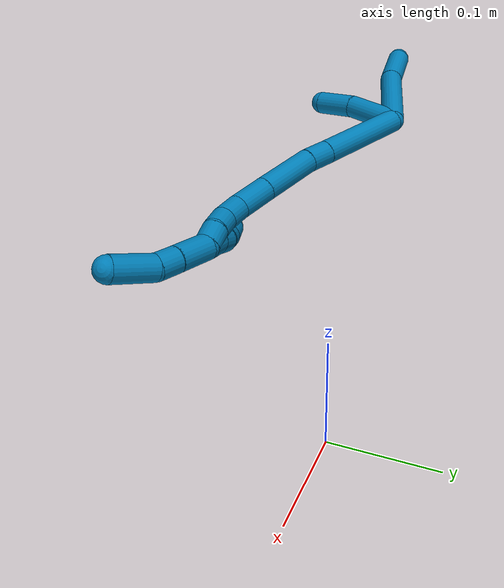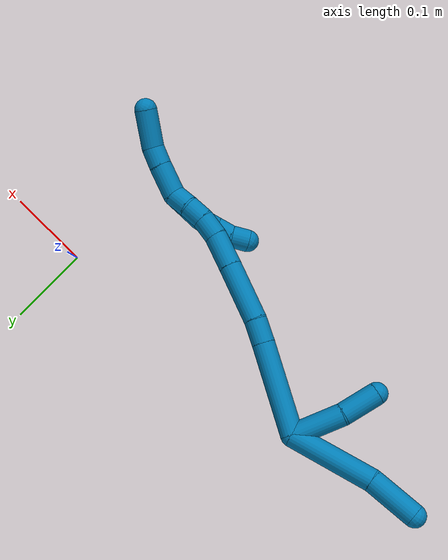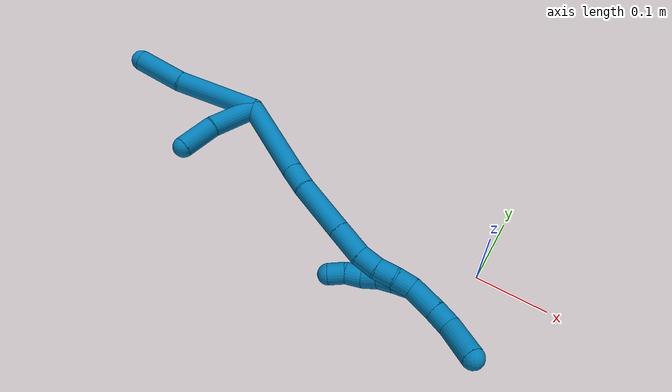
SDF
<sdf version="1.7">
 <world name="default">
  <model name="9">
   <static>0</static>
   <link name="9">
    <collision name="collision-cylinder-e_1_2_8">
     <pose>0.011797 0.032339 0.03277 -0.778775 0.250838 -0.10338</pose>
     <geometry><cylinder><radius>0.0125</radius><length>0.095054</length></cylinder></geometry>
     <surface>
      <friction><ode><mu>1.16</mu><mu2>1.16</mu2><slip1>0</slip1><slip2>0</slip2></ode></friction>
      <contact><ode><kp>1e+06</kp><kd>1</kd><max_vel>0</max_vel><min_depth>0.001</min_depth></ode></contact>
     </surface>
    </collision>
    <visual name="visual-cylinder-e_1_2_8">
     <pose>0.011797 0.032339 0.03277 -0.778775 0.250838 -0.10338</pose>
     <geometry><cylinder><radius>0.0125</radius><length>0.095054</length></cylinder></geometry>
     <material><ambient>0 0.490196 0.709804 1</ambient></material>
    </visual>
    <collision name="collision-cylinder-e_2_8_6">
     <pose>0.025348 0.084504 0.084476 -0.808383 0.063907 -0.027343</pose>
     <geometry><cylinder><radius>0.0125</radius><length>0.054946</length></cylinder></geometry>
     <surface>
      <friction><ode><mu>1.16</mu><mu2>1.16</mu2><slip1>0</slip1><slip2>0</slip2></ode></friction>
      <contact><ode><kp>1e+06</kp><kd>1</kd><max_vel>0</max_vel><min_depth>0.001</min_depth></ode></contact>
     </surface>
    </collision>
    <visual name="visual-cylinder-e_2_8_6">
     <pose>0.025348 0.084504 0.084476 -0.808383 0.063907 -0.027343</pose>
     <geometry><cylinder><radius>0.0125</radius><length>0.054946</length></cylinder></geometry>
     <material><ambient>0 0.490196 0.709804 1</ambient></material>
    </visual>
    <collision name="collision-cylinder-e_1_2_9">
     <pose>0.025834 0.004512 0.012107 -0.356761 1.10705 -0.221918</pose>
     <geometry><cylinder><radius>0.0125</radius><length>0.05777</length></cylinder></geometry>
     <surface>
      <friction><ode><mu>1.16</mu><mu2>1.16</mu2><slip1>0</slip1><slip2>0</slip2></ode></friction>
      <contact><ode><kp>1e+06</kp><kd>1</kd><max_vel>0</max_vel><min_depth>0.001</min_depth></ode></contact>
     </surface>
    </collision>
    <visual name="visual-cylinder-e_1_2_9">
     <pose>0.025834 0.004512 0.012107 -0.356761 1.10705 -0.221918</pose>
     <geometry><cylinder><radius>0.0125</radius><length>0.05777</length></cylinder></geometry>
     <material><ambient>0 0.490196 0.709804 1</ambient></material>
    </visual>
    <collision name="collision-cylinder-e_2_9_5">
     <pose>0.071073 0.008258 0.032503 0.092236 1.16556 0.060821</pose>
     <geometry><cylinder><radius>0.0125</radius><length>0.04223</length></cylinder></geometry>
     <surface>
      <friction><ode><mu>1.16</mu><mu2>1.16</mu2><slip1>0</slip1><slip2>0</slip2></ode></friction>
      <contact><ode><kp>1e+06</kp><kd>1</kd><max_vel>0</max_vel><min_depth>0.001</min_depth></ode></contact>
     </surface>
    </collision>
    <visual name="visual-cylinder-e_2_9_5">
     <pose>0.071073 0.008258 0.032503 0.092236 1.16556 0.060821</pose>
     <geometry><cylinder><radius>0.0125</radius><length>0.04223</length></cylinder></geometry>
     <material><ambient>0 0.490196 0.709804 1</ambient></material>
    </visual>
    <collision name="collision-cylinder-e_1_2_10">
     <pose>0.025242 -0.033499 -0.029427 2.29157 0.515126 1.05417</pose>
     <geometry><cylinder><radius>0.0125</radius><length>0.102477</length></cylinder></geometry>
     <surface>
      <friction><ode><mu>1.16</mu><mu2>1.16</mu2><slip1>0</slip1><slip2>0</slip2></ode></friction>
      <contact><ode><kp>1e+06</kp><kd>1</kd><max_vel>0</max_vel><min_depth>0.001</min_depth></ode></contact>
     </surface>
    </collision>
    <visual name="visual-cylinder-e_1_2_10">
     <pose>0.025242 -0.033499 -0.029427 2.29157 0.515126 1.05417</pose>
     <geometry><cylinder><radius>0.0125</radius><length>0.102477</length></cylinder></geometry>
     <material><ambient>0 0.490196 0.709804 1</ambient></material>
    </visual>
    <collision name="collision-cylinder-e_2_10_11">
     <pose>0.056989 -0.075564 -0.067153 2.34034 0.499336 1.08386</pose>
     <geometry><cylinder><radius>0.0125</radius><length>0.027169</length></cylinder></geometry>
     <surface>
      <friction><ode><mu>1.16</mu><mu2>1.16</mu2><slip1>0</slip1><slip2>0</slip2></ode></friction>
      <contact><ode><kp>1e+06</kp><kd>1</kd><max_vel>0</max_vel><min_depth>0.001</min_depth></ode></contact>
     </surface>
    </collision>
    <visual name="visual-cylinder-e_2_10_11">
     <pose>0.056989 -0.075564 -0.067153 2.34034 0.499336 1.08386</pose>
     <geometry><cylinder><radius>0.0125</radius><length>0.027169</length></cylinder></geometry>
     <material><ambient>0 0.490196 0.709804 1</ambient></material>
    </visual>
    <collision name="collision-cylinder-e_3_11_12">
     <pose>0.075389 -0.106906 -0.095324 2.28822 0.374896 0.790521</pose>
     <geometry><cylinder><radius>0.0125</radius><length>0.064966</length></cylinder></geometry>
     <surface>
      <friction><ode><mu>1.16</mu><mu2>1.16</mu2><slip1>0</slip1><slip2>0</slip2></ode></friction>
      <contact><ode><kp>1e+06</kp><kd>1</kd><max_vel>0</max_vel><min_depth>0.001</min_depth></ode></contact>
     </surface>
    </collision>
    <visual name="visual-cylinder-e_3_11_12">
     <pose>0.075389 -0.106906 -0.095324 2.28822 0.374896 0.790521</pose>
     <geometry><cylinder><radius>0.0125</radius><length>0.064966</length></cylinder></geometry>
     <material><ambient>0 0.490196 0.709804 1</ambient></material>
    </visual>
    <collision name="collision-cylinder-e_4_12_13">
     <pose>0.094061 -0.14314 -0.126882 2.28583 0.363375 0.765888</pose>
     <geometry><cylinder><radius>0.0125</radius><length>0.038137</length></cylinder></geometry>
     <surface>
      <friction><ode><mu>1.16</mu><mu2>1.16</mu2><slip1>0</slip1><slip2>0</slip2></ode></friction>
      <contact><ode><kp>1e+06</kp><kd>1</kd><max_vel>0</max_vel><min_depth>0.001</min_depth></ode></contact>
     </surface>
    </collision>
    <visual name="visual-cylinder-e_4_12_13">
     <pose>0.094061 -0.14314 -0.126882 2.28583 0.363375 0.765888</pose>
     <geometry><cylinder><radius>0.0125</radius><length>0.038137</length></cylinder></geometry>
     <material><ambient>0 0.490196 0.709804 1</ambient></material>
    </visual>
    <collision name="collision-cylinder-e_5_13_14">
     <pose>0.103192 -0.164409 -0.147421 2.4186 0.196778 0.51071</pose>
     <geometry><cylinder><radius>0.0125</radius><length>0.024078</length></cylinder></geometry>
     <surface>
      <friction><ode><mu>1.16</mu><mu2>1.16</mu2><slip1>0</slip1><slip2>0</slip2></ode></friction>
      <contact><ode><kp>1e+06</kp><kd>1</kd><max_vel>0</max_vel><min_depth>0.001</min_depth></ode></contact>
     </surface>
    </collision>
    <visual name="visual-cylinder-e_5_13_14">
     <pose>0.103192 -0.164409 -0.147421 2.4186 0.196778 0.51071</pose>
     <geometry><cylinder><radius>0.0125</radius><length>0.024078</length></cylinder></geometry>
     <material><ambient>0 0.490196 0.709804 1</ambient></material>
    </visual>
    <collision name="collision-cylinder-e_6_14_15">
     <pose>0.105547 -0.178759 -0.164627 2.47752 0.000102 0.000297</pose>
     <geometry><cylinder><radius>0.0125</radius><length>0.021215</length></cylinder></geometry>
     <surface>
      <friction><ode><mu>1.16</mu><mu2>1.16</mu2><slip1>0</slip1><slip2>0</slip2></ode></friction>
      <contact><ode><kp>1e+06</kp><kd>1</kd><max_vel>0</max_vel><min_depth>0.001</min_depth></ode></contact>
     </surface>
    </collision>
    <visual name="visual-cylinder-e_6_14_15">
     <pose>0.105547 -0.178759 -0.164627 2.47752 0.000102 0.000297</pose>
     <geometry><cylinder><radius>0.0125</radius><length>0.021215</length></cylinder></geometry>
     <material><ambient>0 0.490196 0.709804 1</ambient></material>
    </visual>
    <collision name="collision-cylinder-e_7_15_1">
     <pose>0.104808 -0.193601 -0.180125 2.28127 -0.067405 -0.146702</pose>
     <geometry><cylinder><radius>0.0125</radius><length>0.021958</length></cylinder></geometry>
     <surface>
      <friction><ode><mu>1.16</mu><mu2>1.16</mu2><slip1>0</slip1><slip2>0</slip2></ode></friction>
      <contact><ode><kp>1e+06</kp><kd>1</kd><max_vel>0</max_vel><min_depth>0.001</min_depth></ode></contact>
     </surface>
    </collision>
    <visual name="visual-cylinder-e_7_15_1">
     <pose>0.104808 -0.193601 -0.180125 2.28127 -0.067405 -0.146702</pose>
     <geometry><cylinder><radius>0.0125</radius><length>0.021958</length></cylinder></geometry>
     <material><ambient>0 0.490196 0.709804 1</ambient></material>
    </visual>
    <collision name="collision-cylinder-e_1_1_16">
     <pose>0.111234 -0.2114 -0.200574 2.52173 0.413088 1.15875</pose>
     <geometry><cylinder><radius>0.0125</radius><length>0.035695</length></cylinder></geometry>
     <surface>
      <friction><ode><mu>1.16</mu><mu2>1.16</mu2><slip1>0</slip1><slip2>0</slip2></ode></friction>
      <contact><ode><kp>1e+06</kp><kd>1</kd><max_vel>0</max_vel><min_depth>0.001</min_depth></ode></contact>
     </surface>
    </collision>
    <visual name="visual-cylinder-e_1_1_16">
     <pose>0.111234 -0.2114 -0.200574 2.52173 0.413088 1.15875</pose>
     <geometry><cylinder><radius>0.0125</radius><length>0.035695</length></cylinder></geometry>
     <material><ambient>0 0.490196 0.709804 1</ambient></material>
    </visual>
    <collision name="collision-cylinder-e_2_16_17">
     <pose>0.123202 -0.226762 -0.221641 2.49446 0.458616 1.2161</pose>
     <geometry><cylinder><radius>0.0125</radius><length>0.021701</length></cylinder></geometry>
     <surface>
      <friction><ode><mu>1.16</mu><mu2>1.16</mu2><slip1>0</slip1><slip2>0</slip2></ode></friction>
      <contact><ode><kp>1e+06</kp><kd>1</kd><max_vel>0</max_vel><min_depth>0.001</min_depth></ode></contact>
     </surface>
    </collision>
    <visual name="visual-cylinder-e_2_16_17">
     <pose>0.123202 -0.226762 -0.221641 2.49446 0.458616 1.2161</pose>
     <geometry><cylinder><radius>0.0125</radius><length>0.021701</length></cylinder></geometry>
     <material><ambient>0 0.490196 0.709804 1</ambient></material>
    </visual>
    <collision name="collision-cylinder-e_3_17_4">
     <pose>0.141662 -0.238896 -0.244503 2.74811 0.695914 2.13663</pose>
     <geometry><cylinder><radius>0.0125</radius><length>0.042604</length></cylinder></geometry>
     <surface>
      <friction><ode><mu>1.16</mu><mu2>1.16</mu2><slip1>0</slip1><slip2>0</slip2></ode></friction>
      <contact><ode><kp>1e+06</kp><kd>1</kd><max_vel>0</max_vel><min_depth>0.001</min_depth></ode></contact>
     </surface>
    </collision>
    <visual name="visual-cylinder-e_3_17_4">
     <pose>0.141662 -0.238896 -0.244503 2.74811 0.695914 2.13663</pose>
     <geometry><cylinder><radius>0.0125</radius><length>0.042604</length></cylinder></geometry>
     <material><ambient>0 0.490196 0.709804 1</ambient></material>
    </visual>
    <collision name="collision-cylinder-e_1_1_18">
     <pose>0.103529 -0.19833 -0.177945 -0.366099 -0.053996 0.009998</pose>
     <geometry><cylinder><radius>0.0125</radius><length>0.02</length></cylinder></geometry>
     <surface>
      <friction><ode><mu>1.16</mu><mu2>1.16</mu2><slip1>0</slip1><slip2>0</slip2></ode></friction>
      <contact><ode><kp>1e+06</kp><kd>1</kd><max_vel>0</max_vel><min_depth>0.001</min_depth></ode></contact>
     </surface>
    </collision>
    <visual name="visual-cylinder-e_1_1_18">
     <pose>0.103529 -0.19833 -0.177945 -0.366099 -0.053996 0.009998</pose>
     <geometry><cylinder><radius>0.0125</radius><length>0.02</length></cylinder></geometry>
     <material><ambient>0 0.490196 0.709804 1</ambient></material>
    </visual>
    <collision name="collision-cylinder-e_2_18_19">
     <pose>0.102177 -0.192291 -0.158964 -0.249844 -0.081332 0.010219</pose>
     <geometry><cylinder><radius>0.0125</radius><length>0.02</length></cylinder></geometry>
     <surface>
      <friction><ode><mu>1.16</mu><mu2>1.16</mu2><slip1>0</slip1><slip2>0</slip2></ode></friction>
      <contact><ode><kp>1e+06</kp><kd>1</kd><max_vel>0</max_vel><min_depth>0.001</min_depth></ode></contact>
     </surface>
    </collision>
    <visual name="visual-cylinder-e_2_18_19">
     <pose>0.102177 -0.192291 -0.158964 -0.249844 -0.081332 0.010219</pose>
     <geometry><cylinder><radius>0.0125</radius><length>0.02</length></cylinder></geometry>
     <material><ambient>0 0.490196 0.709804 1</ambient></material>
    </visual>
    <collision name="collision-cylinder-e_3_19_20">
     <pose>0.102875 -0.187706 -0.139651 -0.216239 0.151586 -0.016485</pose>
     <geometry><cylinder><radius>0.0125</radius><length>0.02</length></cylinder></geometry>
     <surface>
      <friction><ode><mu>1.16</mu><mu2>1.16</mu2><slip1>0</slip1><slip2>0</slip2></ode></friction>
      <contact><ode><kp>1e+06</kp><kd>1</kd><max_vel>0</max_vel><min_depth>0.001</min_depth></ode></contact>
     </surface>
    </collision>
    <visual name="visual-cylinder-e_3_19_20">
     <pose>0.102875 -0.187706 -0.139651 -0.216239 0.151586 -0.016485</pose>
     <geometry><cylinder><radius>0.0125</radius><length>0.02</length></cylinder></geometry>
     <material><ambient>0 0.490196 0.709804 1</ambient></material>
    </visual>
    <collision name="collision-cylinder-e_4_20_21">
     <pose>0.10629 -0.180617 -0.121529 -0.530535 0.191647 -0.052213</pose>
     <geometry><cylinder><radius>0.0125</radius><length>0.02</length></cylinder></geometry>
     <surface>
      <friction><ode><mu>1.16</mu><mu2>1.16</mu2><slip1>0</slip1><slip2>0</slip2></ode></friction>
      <contact><ode><kp>1e+06</kp><kd>1</kd><max_vel>0</max_vel><min_depth>0.001</min_depth></ode></contact>
     </surface>
    </collision>
    <visual name="visual-cylinder-e_4_20_21">
     <pose>0.10629 -0.180617 -0.121529 -0.530535 0.191647 -0.052213</pose>
     <geometry><cylinder><radius>0.0125</radius><length>0.02</length></cylinder></geometry>
     <material><ambient>0 0.490196 0.709804 1</ambient></material>
    </visual>
    <collision name="collision-cylinder-e_5_21_3">
     <pose>0.112284 -0.172759 -0.104406 -0.322392 0.421263 -0.069503</pose>
     <geometry><cylinder><radius>0.0125</radius><length>0.02</length></cylinder></geometry>
     <surface>
      <friction><ode><mu>1.16</mu><mu2>1.16</mu2><slip1>0</slip1><slip2>0</slip2></ode></friction>
      <contact><ode><kp>1e+06</kp><kd>1</kd><max_vel>0</max_vel><min_depth>0.001</min_depth></ode></contact>
     </surface>
    </collision>
    <visual name="visual-cylinder-e_5_21_3">
     <pose>0.112284 -0.172759 -0.104406 -0.322392 0.421263 -0.069503</pose>
     <geometry><cylinder><radius>0.0125</radius><length>0.02</length></cylinder></geometry>
     <material><ambient>0 0.490196 0.709804 1</ambient></material>
    </visual>
    <collision name="collision-sphere-3">
     <pose>0.116373 -0.169867 -0.09575 0 -0 0</pose>
     <geometry><sphere><radius>0.0125</radius></sphere></geometry>
     <surface>
      <friction><ode><mu>1.16</mu><mu2>1.16</mu2><slip1>0</slip1><slip2>0</slip2></ode></friction>
      <contact><ode><kp>1e+06</kp><kd>1</kd><max_vel>0</max_vel><min_depth>0.001</min_depth></ode></contact>
     </surface>
    </collision>
    <visual name="visual-sphere-3">
     <pose>0.116373 -0.169867 -0.09575 0 -0 0</pose>
     <geometry><sphere><radius>0.0125</radius></sphere></geometry>
     <material><ambient>0 0.490196 0.709804 1</ambient></material>
    </visual>
    <collision name="collision-sphere-21">
     <pose>0.108194 -0.17565 -0.113061 0 -0 0</pose>
     <geometry><sphere><radius>0.0125</radius></sphere></geometry>
     <surface>
      <friction><ode><mu>1.16</mu><mu2>1.16</mu2><slip1>0</slip1><slip2>0</slip2></ode></friction>
      <contact><ode><kp>1e+06</kp><kd>1</kd><max_vel>0</max_vel><min_depth>0.001</min_depth></ode></contact>
     </surface>
    </collision>
    <visual name="visual-sphere-21">
     <pose>0.108194 -0.17565 -0.113061 0 -0 0</pose>
     <geometry><sphere><radius>0.0125</radius></sphere></geometry>
     <material><ambient>0 0.490196 0.709804 1</ambient></material>
    </visual>
    <collision name="collision-sphere-20">
     <pose>0.104385 -0.185585 -0.129996 0 -0 0</pose>
     <geometry><sphere><radius>0.0125</radius></sphere></geometry>
     <surface>
      <friction><ode><mu>1.16</mu><mu2>1.16</mu2><slip1>0</slip1><slip2>0</slip2></ode></friction>
      <contact><ode><kp>1e+06</kp><kd>1</kd><max_vel>0</max_vel><min_depth>0.001</min_depth></ode></contact>
     </surface>
    </collision>
    <visual name="visual-sphere-20">
     <pose>0.104385 -0.185585 -0.129996 0 -0 0</pose>
     <geometry><sphere><radius>0.0125</radius></sphere></geometry>
     <material><ambient>0 0.490196 0.709804 1</ambient></material>
    </visual>
    <collision name="collision-sphere-19">
     <pose>0.101365 -0.189827 -0.149307 0 -0 0</pose>
     <geometry><sphere><radius>0.0125</radius></sphere></geometry>
     <surface>
      <friction><ode><mu>1.16</mu><mu2>1.16</mu2><slip1>0</slip1><slip2>0</slip2></ode></friction>
      <contact><ode><kp>1e+06</kp><kd>1</kd><max_vel>0</max_vel><min_depth>0.001</min_depth></ode></contact>
     </surface>
    </collision>
    <visual name="visual-sphere-19">
     <pose>0.101365 -0.189827 -0.149307 0 -0 0</pose>
     <geometry><sphere><radius>0.0125</radius></sphere></geometry>
     <material><ambient>0 0.490196 0.709804 1</ambient></material>
    </visual>
    <collision name="collision-sphere-10">
     <pose>0.050485 -0.066999 -0.058855 0 -0 0</pose>
     <geometry><sphere><radius>0.0125</radius></sphere></geometry>
     <surface>
      <friction><ode><mu>1.16</mu><mu2>1.16</mu2><slip1>0</slip1><slip2>0</slip2></ode></friction>
      <contact><ode><kp>1e+06</kp><kd>1</kd><max_vel>0</max_vel><min_depth>0.001</min_depth></ode></contact>
     </surface>
    </collision>
    <visual name="visual-sphere-10">
     <pose>0.050485 -0.066999 -0.058855 0 -0 0</pose>
     <geometry><sphere><radius>0.0125</radius></sphere></geometry>
     <material><ambient>0 0.490196 0.709804 1</ambient></material>
    </visual>
    <collision name="collision-sphere-5">
     <pose>0.090478 0.007491 0.040792 0 -0 0</pose>
     <geometry><sphere><radius>0.0125</radius></sphere></geometry>
     <surface>
      <friction><ode><mu>1.16</mu><mu2>1.16</mu2><slip1>0</slip1><slip2>0</slip2></ode></friction>
      <contact><ode><kp>1e+06</kp><kd>1</kd><max_vel>0</max_vel><min_depth>0.001</min_depth></ode></contact>
     </surface>
    </collision>
    <visual name="visual-sphere-5">
     <pose>0.090478 0.007491 0.040792 0 -0 0</pose>
     <geometry><sphere><radius>0.0125</radius></sphere></geometry>
     <material><ambient>0 0.490196 0.709804 1</ambient></material>
    </visual>
    <collision name="collision-sphere-6">
     <pose>0.027103 0.104331 0.103412 0 -0 0</pose>
     <geometry><sphere><radius>0.0125</radius></sphere></geometry>
     <surface>
      <friction><ode><mu>1.16</mu><mu2>1.16</mu2><slip1>0</slip1><slip2>0</slip2></ode></friction>
      <contact><ode><kp>1e+06</kp><kd>1</kd><max_vel>0</max_vel><min_depth>0.001</min_depth></ode></contact>
     </surface>
    </collision>
    <visual name="visual-sphere-6">
     <pose>0.027103 0.104331 0.103412 0 -0 0</pose>
     <geometry><sphere><radius>0.0125</radius></sphere></geometry>
     <material><ambient>0 0.490196 0.709804 1</ambient></material>
    </visual>
    <collision name="collision-sphere-9">
     <pose>0.051669 0.009025 0.024214 0 -0 0</pose>
     <geometry><sphere><radius>0.0125</radius></sphere></geometry>
     <surface>
      <friction><ode><mu>1.16</mu><mu2>1.16</mu2><slip1>0</slip1><slip2>0</slip2></ode></friction>
      <contact><ode><kp>1e+06</kp><kd>1</kd><max_vel>0</max_vel><min_depth>0.001</min_depth></ode></contact>
     </surface>
    </collision>
    <visual name="visual-sphere-9">
     <pose>0.051669 0.009025 0.024214 0 -0 0</pose>
     <geometry><sphere><radius>0.0125</radius></sphere></geometry>
     <material><ambient>0 0.490196 0.709804 1</ambient></material>
    </visual>
    <collision name="collision-sphere-2">
     <geometry><sphere><radius>0.0125</radius></sphere></geometry>
     <surface>
      <friction><ode><mu>1.16</mu><mu2>1.16</mu2><slip1>0</slip1><slip2>0</slip2></ode></friction>
      <contact><ode><kp>1e+06</kp><kd>1</kd><max_vel>0</max_vel><min_depth>0.001</min_depth></ode></contact>
     </surface>
    </collision>
    <visual name="visual-sphere-2">
     <geometry><sphere><radius>0.0125</radius></sphere></geometry>
     <material><ambient>0 0.490196 0.709804 1</ambient></material>
    </visual>
    <collision name="collision-sphere-8">
     <pose>0.023594 0.064677 0.06554 0 -0 0</pose>
     <geometry><sphere><radius>0.0125</radius></sphere></geometry>
     <surface>
      <friction><ode><mu>1.16</mu><mu2>1.16</mu2><slip1>0</slip1><slip2>0</slip2></ode></friction>
      <contact><ode><kp>1e+06</kp><kd>1</kd><max_vel>0</max_vel><min_depth>0.001</min_depth></ode></contact>
     </surface>
    </collision>
    <visual name="visual-sphere-8">
     <pose>0.023594 0.064677 0.06554 0 -0 0</pose>
     <geometry><sphere><radius>0.0125</radius></sphere></geometry>
     <material><ambient>0 0.490196 0.709804 1</ambient></material>
    </visual>
    <collision name="collision-sphere-11">
     <pose>0.063494 -0.08413 -0.075451 0 -0 0</pose>
     <geometry><sphere><radius>0.0125</radius></sphere></geometry>
     <surface>
      <friction><ode><mu>1.16</mu><mu2>1.16</mu2><slip1>0</slip1><slip2>0</slip2></ode></friction>
      <contact><ode><kp>1e+06</kp><kd>1</kd><max_vel>0</max_vel><min_depth>0.001</min_depth></ode></contact>
     </surface>
    </collision>
    <visual name="visual-sphere-11">
     <pose>0.063494 -0.08413 -0.075451 0 -0 0</pose>
     <geometry><sphere><radius>0.0125</radius></sphere></geometry>
     <material><ambient>0 0.490196 0.709804 1</ambient></material>
    </visual>
    <collision name="collision-sphere-12">
     <pose>0.087283 -0.129682 -0.115196 0 -0 0</pose>
     <geometry><sphere><radius>0.0125</radius></sphere></geometry>
     <surface>
      <friction><ode><mu>1.16</mu><mu2>1.16</mu2><slip1>0</slip1><slip2>0</slip2></ode></friction>
      <contact><ode><kp>1e+06</kp><kd>1</kd><max_vel>0</max_vel><min_depth>0.001</min_depth></ode></contact>
     </surface>
    </collision>
    <visual name="visual-sphere-12">
     <pose>0.087283 -0.129682 -0.115196 0 -0 0</pose>
     <geometry><sphere><radius>0.0125</radius></sphere></geometry>
     <material><ambient>0 0.490196 0.709804 1</ambient></material>
    </visual>
    <collision name="collision-sphere-13">
     <pose>0.100838 -0.156598 -0.138568 0 -0 0</pose>
     <geometry><sphere><radius>0.0125</radius></sphere></geometry>
     <surface>
      <friction><ode><mu>1.16</mu><mu2>1.16</mu2><slip1>0</slip1><slip2>0</slip2></ode></friction>
      <contact><ode><kp>1e+06</kp><kd>1</kd><max_vel>0</max_vel><min_depth>0.001</min_depth></ode></contact>
     </surface>
    </collision>
    <visual name="visual-sphere-13">
     <pose>0.100838 -0.156598 -0.138568 0 -0 0</pose>
     <geometry><sphere><radius>0.0125</radius></sphere></geometry>
     <material><ambient>0 0.490196 0.709804 1</ambient></material>
    </visual>
    <collision name="collision-sphere-14">
     <pose>0.105546 -0.172221 -0.156274 0 -0 0</pose>
     <geometry><sphere><radius>0.0125</radius></sphere></geometry>
     <surface>
      <friction><ode><mu>1.16</mu><mu2>1.16</mu2><slip1>0</slip1><slip2>0</slip2></ode></friction>
      <contact><ode><kp>1e+06</kp><kd>1</kd><max_vel>0</max_vel><min_depth>0.001</min_depth></ode></contact>
     </surface>
    </collision>
    <visual name="visual-sphere-14">
     <pose>0.105546 -0.172221 -0.156274 0 -0 0</pose>
     <geometry><sphere><radius>0.0125</radius></sphere></geometry>
     <material><ambient>0 0.490196 0.709804 1</ambient></material>
    </visual>
    <collision name="collision-sphere-15">
     <pose>0.105548 -0.185297 -0.172981 0 -0 0</pose>
     <geometry><sphere><radius>0.0125</radius></sphere></geometry>
     <surface>
      <friction><ode><mu>1.16</mu><mu2>1.16</mu2><slip1>0</slip1><slip2>0</slip2></ode></friction>
      <contact><ode><kp>1e+06</kp><kd>1</kd><max_vel>0</max_vel><min_depth>0.001</min_depth></ode></contact>
     </surface>
    </collision>
    <visual name="visual-sphere-15">
     <pose>0.105548 -0.185297 -0.172981 0 -0 0</pose>
     <geometry><sphere><radius>0.0125</radius></sphere></geometry>
     <material><ambient>0 0.490196 0.709804 1</ambient></material>
    </visual>
    <collision name="collision-sphere-1">
     <pose>0.104069 -0.201904 -0.187269 0 -0 0</pose>
     <geometry><sphere><radius>0.0125</radius></sphere></geometry>
     <surface>
      <friction><ode><mu>1.16</mu><mu2>1.16</mu2><slip1>0</slip1><slip2>0</slip2></ode></friction>
      <contact><ode><kp>1e+06</kp><kd>1</kd><max_vel>0</max_vel><min_depth>0.001</min_depth></ode></contact>
     </surface>
    </collision>
    <visual name="visual-sphere-1">
     <pose>0.104069 -0.201904 -0.187269 0 -0 0</pose>
     <geometry><sphere><radius>0.0125</radius></sphere></geometry>
     <material><ambient>0 0.490196 0.709804 1</ambient></material>
    </visual>
    <collision name="collision-sphere-18">
     <pose>0.10299 -0.194755 -0.168622 0 -0 0</pose>
     <geometry><sphere><radius>0.0125</radius></sphere></geometry>
     <surface>
      <friction><ode><mu>1.16</mu><mu2>1.16</mu2><slip1>0</slip1><slip2>0</slip2></ode></friction>
      <contact><ode><kp>1e+06</kp><kd>1</kd><max_vel>0</max_vel><min_depth>0.001</min_depth></ode></contact>
     </surface>
    </collision>
    <visual name="visual-sphere-18">
     <pose>0.10299 -0.194755 -0.168622 0 -0 0</pose>
     <geometry><sphere><radius>0.0125</radius></sphere></geometry>
     <material><ambient>0 0.490196 0.709804 1</ambient></material>
    </visual>
    <collision name="collision-sphere-16">
     <pose>0.118398 -0.220896 -0.213879 0 -0 0</pose>
     <geometry><sphere><radius>0.0125</radius></sphere></geometry>
     <surface>
      <friction><ode><mu>1.16</mu><mu2>1.16</mu2><slip1>0</slip1><slip2>0</slip2></ode></friction>
      <contact><ode><kp>1e+06</kp><kd>1</kd><max_vel>0</max_vel><min_depth>0.001</min_depth></ode></contact>
     </surface>
    </collision>
    <visual name="visual-sphere-16">
     <pose>0.118398 -0.220896 -0.213879 0 -0 0</pose>
     <geometry><sphere><radius>0.0125</radius></sphere></geometry>
     <material><ambient>0 0.490196 0.709804 1</ambient></material>
    </visual>
    <collision name="collision-sphere-17">
     <pose>0.128006 -0.232628 -0.229404 0 -0 0</pose>
     <geometry><sphere><radius>0.0125</radius></sphere></geometry>
     <surface>
      <friction><ode><mu>1.16</mu><mu2>1.16</mu2><slip1>0</slip1><slip2>0</slip2></ode></friction>
      <contact><ode><kp>1e+06</kp><kd>1</kd><max_vel>0</max_vel><min_depth>0.001</min_depth></ode></contact>
     </surface>
    </collision>
    <visual name="visual-sphere-17">
     <pose>0.128006 -0.232628 -0.229404 0 -0 0</pose>
     <geometry><sphere><radius>0.0125</radius></sphere></geometry>
     <material><ambient>0 0.490196 0.709804 1</ambient></material>
    </visual>
    <collision name="collision-sphere-4">
     <pose>0.155319 -0.245164 -0.259602 0 -0 0</pose>
     <geometry><sphere><radius>0.0125</radius></sphere></geometry>
     <surface>
      <friction><ode><mu>1.16</mu><mu2>1.16</mu2><slip1>0</slip1><slip2>0</slip2></ode></friction>
      <contact><ode><kp>1e+06</kp><kd>1</kd><max_vel>0</max_vel><min_depth>0.001</min_depth></ode></contact>
     </surface>
    </collision>
    <visual name="visual-sphere-4">
     <pose>0.155319 -0.245164 -0.259602 0 -0 0</pose>
     <geometry><sphere><radius>0.0125</radius></sphere></geometry>
     <material><ambient>0 0.490196 0.709804 1</ambient></material>
    </visual>
    <inertial>
     <pose>0.066501 -0.083793 -0.071302 0 -0 0</pose>
     <mass>0.75</mass>
     <inertia>
      <ixx>0.000291</ixx>
      <ixy>0</ixy>
      <ixz>0</ixz>
      <iyy>0.000179</iyy>
      <iyz>0</iyz>
      <izz>-8.6e-05</izz>
     </inertia>
    </inertial>
   </link>
   <pose>-0.319576 -0.033633 0.190852 2.13613 -0.198977 -1.49897</pose>
  </model>
 </world>
</sdf>
